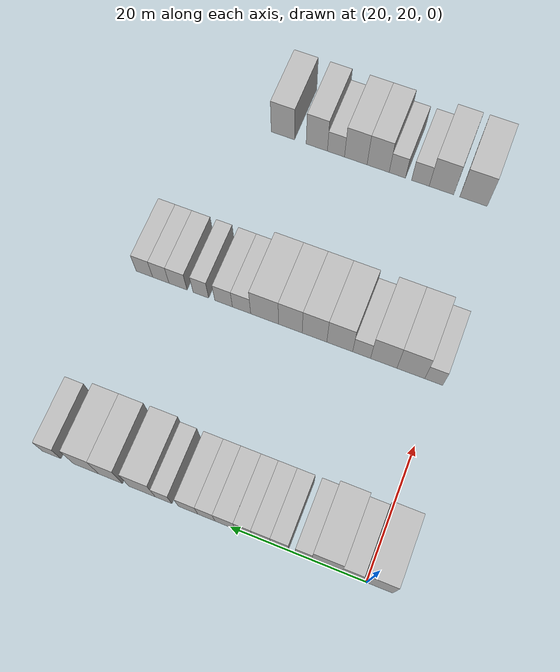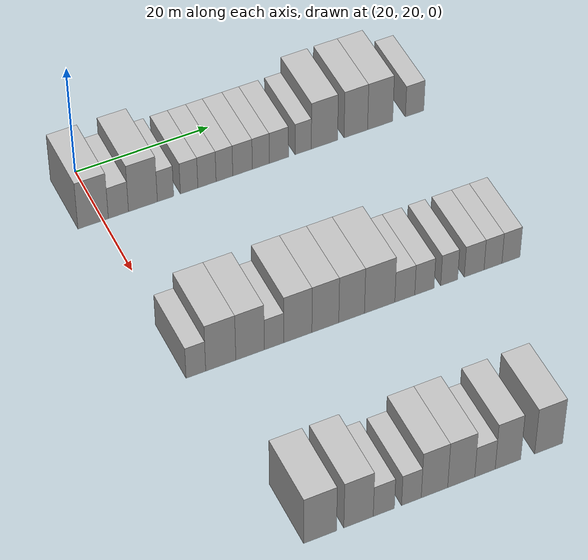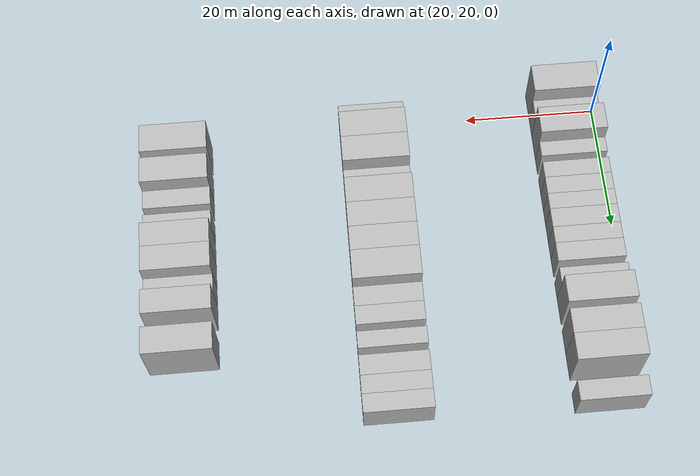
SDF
<sdf version="1.6">
 <world name="default">
  <model name="building_122">
   <static>1</static>
   <pose>25.0000 18.5114 0 0.000000 0.000000 0.000000</pose>
   <link name="link">
    <pose>0 0 4.50 0 0 0</pose>
    <collision name="collision"><geometry><box><size>10.0000 4.4599 9.0000</size></box></geometry></collision>
    <visual name="visual">
     <cast_shadows>0</cast_shadows>
     <geometry><box><size>10.0000 4.4599 9.0000</size></box></geometry>
     <material>
      <script>
       <uri>model://HANNAS_wall/materials/scripts</uri>
       <uri>model://HANNAS_wall/materials/textures</uri>
       <name>vrc/HANNAS_wall</name>
      </script>
     </material>
    </visual>
   </link>
  </model>
  <model name="building_123">
   <static>1</static>
   <pose>25.0000 22.2302 0 0.000000 0.000000 0.000000</pose>
   <link name="link">
    <pose>0 0 3.00 0 0 0</pose>
    <collision name="collision"><geometry><box><size>10.0000 2.9778 6.0000</size></box></geometry></collision>
    <visual name="visual">
     <cast_shadows>0</cast_shadows>
     <geometry><box><size>10.0000 2.9778 6.0000</size></box></geometry>
     <material>
      <script>
       <uri>model://HANNAS_wall/materials/scripts</uri>
       <uri>model://HANNAS_wall/materials/textures</uri>
       <name>vrc/HANNAS_wall</name>
      </script>
     </material>
    </visual>
   </link>
  </model>
  <model name="building_124">
   <static>1</static>
   <pose>25.0000 25.8621 0 0.000000 0.000000 0.000000</pose>
   <link name="link">
    <pose>0 0 4.50 0 0 0</pose>
    <collision name="collision"><geometry><box><size>10.0000 4.2860 9.0000</size></box></geometry></collision>
    <visual name="visual">
     <cast_shadows>0</cast_shadows>
     <geometry><box><size>10.0000 4.2860 9.0000</size></box></geometry>
     <material>
      <script>
       <uri>model://HANNAS_wall/materials/scripts</uri>
       <uri>model://HANNAS_wall/materials/textures</uri>
       <name>vrc/HANNAS_wall</name>
      </script>
     </material>
    </visual>
   </link>
  </model>
  <model name="building_125">
   <static>1</static>
   <pose>25.0000 29.2216 0 0.000000 0.000000 0.000000</pose>
   <link name="link">
    <pose>0 0 3.00 0 0 0</pose>
    <collision name="collision"><geometry><box><size>10.0000 2.4331 6.0000</size></box></geometry></collision>
    <visual name="visual">
     <cast_shadows>0</cast_shadows>
     <geometry><box><size>10.0000 2.4331 6.0000</size></box></geometry>
     <material>
      <script>
       <uri>model://HANNAS_wall/materials/scripts</uri>
       <uri>model://HANNAS_wall/materials/textures</uri>
       <name>vrc/HANNAS_wall</name>
      </script>
     </material>
    </visual>
   </link>
  </model>
  <model name="building_126">
   <static>1</static>
   <pose>25.0000 32.7442 0 0.000000 0.000000 0.000000</pose>
   <link name="link">
    <pose>0 0 3.00 0 0 0</pose>
    <collision name="collision"><geometry><box><size>10.0000 2.6121 6.0000</size></box></geometry></collision>
    <visual name="visual">
     <cast_shadows>0</cast_shadows>
     <geometry><box><size>10.0000 2.6121 6.0000</size></box></geometry>
     <material>
      <script>
       <uri>model://HANNAS_wall/materials/scripts</uri>
       <uri>model://HANNAS_wall/materials/textures</uri>
       <name>vrc/HANNAS_wall</name>
      </script>
     </material>
    </visual>
   </link>
  </model>
  <model name="building_127">
   <static>1</static>
   <pose>25.0000 35.4242 0 0.000000 0.000000 0.000000</pose>
   <link name="link">
    <pose>0 0 3.00 0 0 0</pose>
    <collision name="collision"><geometry><box><size>10.0000 2.7478 6.0000</size></box></geometry></collision>
    <visual name="visual">
     <cast_shadows>0</cast_shadows>
     <geometry><box><size>10.0000 2.7478 6.0000</size></box></geometry>
     <material>
      <script>
       <uri>model://HANNAS_wall/materials/scripts</uri>
       <uri>model://HANNAS_wall/materials/textures</uri>
       <name>vrc/HANNAS_wall</name>
      </script>
     </material>
    </visual>
   </link>
  </model>
  <model name="building_128">
   <static>1</static>
   <pose>25.0000 38.0592 0 0.000000 0.000000 0.000000</pose>
   <link name="link">
    <pose>0 0 3.00 0 0 0</pose>
    <collision name="collision"><geometry><box><size>10.0000 2.5222 6.0000</size></box></geometry></collision>
    <visual name="visual">
     <cast_shadows>0</cast_shadows>
     <geometry><box><size>10.0000 2.5222 6.0000</size></box></geometry>
     <material>
      <script>
       <uri>model://HANNAS_wall/materials/scripts</uri>
       <uri>model://HANNAS_wall/materials/textures</uri>
       <name>vrc/HANNAS_wall</name>
      </script>
     </material>
    </visual>
   </link>
  </model>
  <model name="building_129">
   <static>1</static>
   <pose>25.0000 40.8072 0 0.000000 0.000000 0.000000</pose>
   <link name="link">
    <pose>0 0 3.00 0 0 0</pose>
    <collision name="collision"><geometry><box><size>10.0000 2.9737 6.0000</size></box></geometry></collision>
    <visual name="visual">
     <cast_shadows>0</cast_shadows>
     <geometry><box><size>10.0000 2.9737 6.0000</size></box></geometry>
     <material>
      <script>
       <uri>model://HANNAS_wall/materials/scripts</uri>
       <uri>model://HANNAS_wall/materials/textures</uri>
       <name>vrc/HANNAS_wall</name>
      </script>
     </material>
    </visual>
   </link>
  </model>
  <model name="building_130">
   <static>1</static>
   <pose>25.0000 43.5850 0 0.000000 0.000000 0.000000</pose>
   <link name="link">
    <pose>0 0 3.00 0 0 0</pose>
    <collision name="collision"><geometry><box><size>10.0000 2.5820 6.0000</size></box></geometry></collision>
    <visual name="visual">
     <cast_shadows>0</cast_shadows>
     <geometry><box><size>10.0000 2.5820 6.0000</size></box></geometry>
     <material>
      <script>
       <uri>model://HANNAS_wall/materials/scripts</uri>
       <uri>model://HANNAS_wall/materials/textures</uri>
       <name>vrc/HANNAS_wall</name>
      </script>
     </material>
    </visual>
   </link>
  </model>
  <model name="building_131">
   <static>1</static>
   <pose>25.0000 46.3458 0 0.000000 0.000000 0.000000</pose>
   <link name="link">
    <pose>0 0 3.00 0 0 0</pose>
    <collision name="collision"><geometry><box><size>10.0000 2.9395 6.0000</size></box></geometry></collision>
    <visual name="visual">
     <cast_shadows>0</cast_shadows>
     <geometry><box><size>10.0000 2.9395 6.0000</size></box></geometry>
     <material>
      <script>
       <uri>model://HANNAS_wall/materials/scripts</uri>
       <uri>model://HANNAS_wall/materials/textures</uri>
       <name>vrc/HANNAS_wall</name>
      </script>
     </material>
    </visual>
   </link>
  </model>
  <model name="building_132">
   <static>1</static>
   <pose>25.0000 50.0695 0 0.000000 0.000000 0.000000</pose>
   <link name="link">
    <pose>0 0 3.00 0 0 0</pose>
    <collision name="collision"><geometry><box><size>10.0000 2.5079 6.0000</size></box></geometry></collision>
    <visual name="visual">
     <cast_shadows>0</cast_shadows>
     <geometry><box><size>10.0000 2.5079 6.0000</size></box></geometry>
     <material>
      <script>
       <uri>model://HANNAS_wall/materials/scripts</uri>
       <uri>model://HANNAS_wall/materials/textures</uri>
       <name>vrc/HANNAS_wall</name>
      </script>
     </material>
    </visual>
   </link>
  </model>
  <model name="building_133">
   <static>1</static>
   <pose>25.0000 53.3549 0 0.000000 0.000000 0.000000</pose>
   <link name="link">
    <pose>0 0 4.50 0 0 0</pose>
    <collision name="collision"><geometry><box><size>10.0000 4.0630 9.0000</size></box></geometry></collision>
    <visual name="visual">
     <cast_shadows>0</cast_shadows>
     <geometry><box><size>10.0000 4.0630 9.0000</size></box></geometry>
     <material>
      <script>
       <uri>model://HANNAS_wall/materials/scripts</uri>
       <uri>model://HANNAS_wall/materials/textures</uri>
       <name>vrc/HANNAS_wall</name>
      </script>
     </material>
    </visual>
   </link>
  </model>
  <model name="building_134">
   <static>1</static>
   <pose>25.0000 58.2160 0 0.000000 0.000000 0.000000</pose>
   <link name="link">
    <pose>0 0 4.50 0 0 0</pose>
    <collision name="collision"><geometry><box><size>10.0000 3.6592 9.0000</size></box></geometry></collision>
    <visual name="visual">
     <cast_shadows>0</cast_shadows>
     <geometry><box><size>10.0000 3.6592 9.0000</size></box></geometry>
     <material>
      <script>
       <uri>model://HANNAS_wall/materials/scripts</uri>
       <uri>model://HANNAS_wall/materials/textures</uri>
       <name>vrc/HANNAS_wall</name>
      </script>
     </material>
    </visual>
   </link>
  </model>
  <model name="building_135">
   <static>1</static>
   <pose>25.0000 62.0174 0 0.000000 0.000000 0.000000</pose>
   <link name="link">
    <pose>0 0 4.50 0 0 0</pose>
    <collision name="collision"><geometry><box><size>10.0000 3.9435 9.0000</size></box></geometry></collision>
    <visual name="visual">
     <cast_shadows>0</cast_shadows>
     <geometry><box><size>10.0000 3.9435 9.0000</size></box></geometry>
     <material>
      <script>
       <uri>model://HANNAS_wall/materials/scripts</uri>
       <uri>model://HANNAS_wall/materials/textures</uri>
       <name>vrc/HANNAS_wall</name>
      </script>
     </material>
    </visual>
   </link>
  </model>
  <model name="building_136">
   <static>1</static>
   <pose>25.0000 67.4396 0 0.000000 0.000000 0.000000</pose>
   <link name="link">
    <pose>0 0 3.00 0 0 0</pose>
    <collision name="collision"><geometry><box><size>10.0000 2.9009 6.0000</size></box></geometry></collision>
    <visual name="visual">
     <cast_shadows>0</cast_shadows>
     <geometry><box><size>10.0000 2.9009 6.0000</size></box></geometry>
     <material>
      <script>
       <uri>model://HANNAS_wall/materials/scripts</uri>
       <uri>model://HANNAS_wall/materials/textures</uri>
       <name>vrc/HANNAS_wall</name>
      </script>
     </material>
    </visual>
   </link>
  </model>
  <model name="building_368">
   <static>1</static>
   <pose>55.0000 20.4793 0 0.000000 0.000000 0.000000</pose>
   <link name="link">
    <pose>0 0 3.00 0 0 0</pose>
    <collision name="collision"><geometry><box><size>10.0000 2.7785 6.0000</size></box></geometry></collision>
    <visual name="visual">
     <cast_shadows>0</cast_shadows>
     <geometry><box><size>10.0000 2.7785 6.0000</size></box></geometry>
     <material>
      <script>
       <uri>model://HANNAS_wall/materials/scripts</uri>
       <uri>model://HANNAS_wall/materials/textures</uri>
       <name>vrc/HANNAS_wall</name>
      </script>
     </material>
    </visual>
   </link>
  </model>
  <model name="building_369">
   <static>1</static>
   <pose>55.0000 24.0112 0 0.000000 0.000000 0.000000</pose>
   <link name="link">
    <pose>0 0 4.50 0 0 0</pose>
    <collision name="collision"><geometry><box><size>10.0000 4.2852 9.0000</size></box></geometry></collision>
    <visual name="visual">
     <cast_shadows>0</cast_shadows>
     <geometry><box><size>10.0000 4.2852 9.0000</size></box></geometry>
     <material>
      <script>
       <uri>model://HANNAS_wall/materials/scripts</uri>
       <uri>model://HANNAS_wall/materials/textures</uri>
       <name>vrc/HANNAS_wall</name>
      </script>
     </material>
    </visual>
   </link>
  </model>
  <model name="building_370">
   <static>1</static>
   <pose>55.0000 28.2032 0 0.000000 0.000000 0.000000</pose>
   <link name="link">
    <pose>0 0 4.50 0 0 0</pose>
    <collision name="collision"><geometry><box><size>10.0000 4.0988 9.0000</size></box></geometry></collision>
    <visual name="visual">
     <cast_shadows>0</cast_shadows>
     <geometry><box><size>10.0000 4.0988 9.0000</size></box></geometry>
     <material>
      <script>
       <uri>model://HANNAS_wall/materials/scripts</uri>
       <uri>model://HANNAS_wall/materials/textures</uri>
       <name>vrc/HANNAS_wall</name>
      </script>
     </material>
    </visual>
   </link>
  </model>
  <model name="building_371">
   <static>1</static>
   <pose>55.0000 31.6506 0 0.000000 0.000000 0.000000</pose>
   <link name="link">
    <pose>0 0 3.00 0 0 0</pose>
    <collision name="collision"><geometry><box><size>10.0000 2.7960 6.0000</size></box></geometry></collision>
    <visual name="visual">
     <cast_shadows>0</cast_shadows>
     <geometry><box><size>10.0000 2.7960 6.0000</size></box></geometry>
     <material>
      <script>
       <uri>model://HANNAS_wall/materials/scripts</uri>
       <uri>model://HANNAS_wall/materials/textures</uri>
       <name>vrc/HANNAS_wall</name>
      </script>
     </material>
    </visual>
   </link>
  </model>
  <model name="building_372">
   <static>1</static>
   <pose>55.0000 35.0815 0 0.000000 0.000000 0.000000</pose>
   <link name="link">
    <pose>0 0 4.50 0 0 0</pose>
    <collision name="collision"><geometry><box><size>10.0000 4.0657 9.0000</size></box></geometry></collision>
    <visual name="visual">
     <cast_shadows>0</cast_shadows>
     <geometry><box><size>10.0000 4.0657 9.0000</size></box></geometry>
     <material>
      <script>
       <uri>model://HANNAS_wall/materials/scripts</uri>
       <uri>model://HANNAS_wall/materials/textures</uri>
       <name>vrc/HANNAS_wall</name>
      </script>
     </material>
    </visual>
   </link>
  </model>
  <model name="building_373">
   <static>1</static>
   <pose>55.0000 39.0700 0 0.000000 0.000000 0.000000</pose>
   <link name="link">
    <pose>0 0 4.50 0 0 0</pose>
    <collision name="collision"><geometry><box><size>10.0000 3.9113 9.0000</size></box></geometry></collision>
    <visual name="visual">
     <cast_shadows>0</cast_shadows>
     <geometry><box><size>10.0000 3.9113 9.0000</size></box></geometry>
     <material>
      <script>
       <uri>model://HANNAS_wall/materials/scripts</uri>
       <uri>model://HANNAS_wall/materials/textures</uri>
       <name>vrc/HANNAS_wall</name>
      </script>
     </material>
    </visual>
   </link>
  </model>
  <model name="building_374">
   <static>1</static>
   <pose>55.0000 42.9078 0 0.000000 0.000000 0.000000</pose>
   <link name="link">
    <pose>0 0 4.50 0 0 0</pose>
    <collision name="collision"><geometry><box><size>10.0000 3.7644 9.0000</size></box></geometry></collision>
    <visual name="visual">
     <cast_shadows>0</cast_shadows>
     <geometry><box><size>10.0000 3.7644 9.0000</size></box></geometry>
     <material>
      <script>
       <uri>model://HANNAS_wall/materials/scripts</uri>
       <uri>model://HANNAS_wall/materials/textures</uri>
       <name>vrc/HANNAS_wall</name>
      </script>
     </material>
    </visual>
   </link>
  </model>
  <model name="building_375">
   <static>1</static>
   <pose>55.0000 47.0318 0 0.000000 0.000000 0.000000</pose>
   <link name="link">
    <pose>0 0 4.50 0 0 0</pose>
    <collision name="collision"><geometry><box><size>10.0000 4.4837 9.0000</size></box></geometry></collision>
    <visual name="visual">
     <cast_shadows>0</cast_shadows>
     <geometry><box><size>10.0000 4.4837 9.0000</size></box></geometry>
     <material>
      <script>
       <uri>model://HANNAS_wall/materials/scripts</uri>
       <uri>model://HANNAS_wall/materials/textures</uri>
       <name>vrc/HANNAS_wall</name>
      </script>
     </material>
    </visual>
   </link>
  </model>
  <model name="building_376">
   <static>1</static>
   <pose>55.0000 50.7520 0 0.000000 0.000000 0.000000</pose>
   <link name="link">
    <pose>0 0 3.00 0 0 0</pose>
    <collision name="collision"><geometry><box><size>10.0000 2.9566 6.0000</size></box></geometry></collision>
    <visual name="visual">
     <cast_shadows>0</cast_shadows>
     <geometry><box><size>10.0000 2.9566 6.0000</size></box></geometry>
     <material>
      <script>
       <uri>model://HANNAS_wall/materials/scripts</uri>
       <uri>model://HANNAS_wall/materials/textures</uri>
       <name>vrc/HANNAS_wall</name>
      </script>
     </material>
    </visual>
   </link>
  </model>
  <model name="building_377">
   <static>1</static>
   <pose>55.0000 53.6667 0 0.000000 0.000000 0.000000</pose>
   <link name="link">
    <pose>0 0 3.00 0 0 0</pose>
    <collision name="collision"><geometry><box><size>10.0000 2.8728 6.0000</size></box></geometry></collision>
    <visual name="visual">
     <cast_shadows>0</cast_shadows>
     <geometry><box><size>10.0000 2.8728 6.0000</size></box></geometry>
     <material>
      <script>
       <uri>model://HANNAS_wall/materials/scripts</uri>
       <uri>model://HANNAS_wall/materials/textures</uri>
       <name>vrc/HANNAS_wall</name>
      </script>
     </material>
    </visual>
   </link>
  </model>
  <model name="building_378">
   <static>1</static>
   <pose>55.0000 57.3732 0 0.000000 0.000000 0.000000</pose>
   <link name="link">
    <pose>0 0 3.00 0 0 0</pose>
    <collision name="collision"><geometry><box><size>10.0000 2.5402 6.0000</size></box></geometry></collision>
    <visual name="visual">
     <cast_shadows>0</cast_shadows>
     <geometry><box><size>10.0000 2.5402 6.0000</size></box></geometry>
     <material>
      <script>
       <uri>model://HANNAS_wall/materials/scripts</uri>
       <uri>model://HANNAS_wall/materials/textures</uri>
       <name>vrc/HANNAS_wall</name>
      </script>
     </material>
    </visual>
   </link>
  </model>
  <model name="building_379">
   <static>1</static>
   <pose>55.0000 61.1310 0 0.000000 0.000000 0.000000</pose>
   <link name="link">
    <pose>0 0 3.00 0 0 0</pose>
    <collision name="collision"><geometry><box><size>10.0000 2.9754 6.0000</size></box></geometry></collision>
    <visual name="visual">
     <cast_shadows>0</cast_shadows>
     <geometry><box><size>10.0000 2.9754 6.0000</size></box></geometry>
     <material>
      <script>
       <uri>model://HANNAS_wall/materials/scripts</uri>
       <uri>model://HANNAS_wall/materials/textures</uri>
       <name>vrc/HANNAS_wall</name>
      </script>
     </material>
    </visual>
   </link>
  </model>
  <model name="building_380">
   <static>1</static>
   <pose>55.0000 63.9722 0 0.000000 0.000000 0.000000</pose>
   <link name="link">
    <pose>0 0 3.00 0 0 0</pose>
    <collision name="collision"><geometry><box><size>10.0000 2.7070 6.0000</size></box></geometry></collision>
    <visual name="visual">
     <cast_shadows>0</cast_shadows>
     <geometry><box><size>10.0000 2.7070 6.0000</size></box></geometry>
     <material>
      <script>
       <uri>model://HANNAS_wall/materials/scripts</uri>
       <uri>model://HANNAS_wall/materials/textures</uri>
       <name>vrc/HANNAS_wall</name>
      </script>
     </material>
    </visual>
   </link>
  </model>
  <model name="building_381">
   <static>1</static>
   <pose>55.0000 66.6975 0 0.000000 0.000000 0.000000</pose>
   <link name="link">
    <pose>0 0 3.00 0 0 0</pose>
    <collision name="collision"><geometry><box><size>10.0000 2.7436 6.0000</size></box></geometry></collision>
    <visual name="visual">
     <cast_shadows>0</cast_shadows>
     <geometry><box><size>10.0000 2.7436 6.0000</size></box></geometry>
     <material>
      <script>
       <uri>model://HANNAS_wall/materials/scripts</uri>
       <uri>model://HANNAS_wall/materials/textures</uri>
       <name>vrc/HANNAS_wall</name>
      </script>
     </material>
    </visual>
   </link>
  </model>
  <model name="building_604">
   <static>1</static>
   <pose>85.0000 23.9300 0 0.000000 0.000000 0.000000</pose>
   <link name="link">
    <pose>0 0 4.50 0 0 0</pose>
    <collision name="collision"><geometry><box><size>10.0000 4.4939 9.0000</size></box></geometry></collision>
    <visual name="visual">
     <cast_shadows>0</cast_shadows>
     <geometry><box><size>10.0000 4.4939 9.0000</size></box></geometry>
     <material>
      <script>
       <uri>model://HANNAS_wall/materials/scripts</uri>
       <uri>model://HANNAS_wall/materials/textures</uri>
       <name>vrc/HANNAS_wall</name>
      </script>
     </material>
    </visual>
   </link>
  </model>
  <model name="building_605">
   <static>1</static>
   <pose>85.0000 29.2043 0 0.000000 0.000000 0.000000</pose>
   <link name="link">
    <pose>0 0 4.50 0 0 0</pose>
    <collision name="collision"><geometry><box><size>10.0000 4.0549 9.0000</size></box></geometry></collision>
    <visual name="visual">
     <cast_shadows>0</cast_shadows>
     <geometry><box><size>10.0000 4.0549 9.0000</size></box></geometry>
     <material>
      <script>
       <uri>model://HANNAS_wall/materials/scripts</uri>
       <uri>model://HANNAS_wall/materials/textures</uri>
       <name>vrc/HANNAS_wall</name>
      </script>
     </material>
    </visual>
   </link>
  </model>
  <model name="building_606">
   <static>1</static>
   <pose>85.0000 32.6960 0 0.000000 0.000000 0.000000</pose>
   <link name="link">
    <pose>0 0 3.00 0 0 0</pose>
    <collision name="collision"><geometry><box><size>10.0000 2.9284 6.0000</size></box></geometry></collision>
    <visual name="visual">
     <cast_shadows>0</cast_shadows>
     <geometry><box><size>10.0000 2.9284 6.0000</size></box></geometry>
     <material>
      <script>
       <uri>model://HANNAS_wall/materials/scripts</uri>
       <uri>model://HANNAS_wall/materials/textures</uri>
       <name>vrc/HANNAS_wall</name>
      </script>
     </material>
    </visual>
   </link>
  </model>
  <model name="building_607">
   <static>1</static>
   <pose>85.0000 36.5300 0 0.000000 0.000000 0.000000</pose>
   <link name="link">
    <pose>0 0 3.00 0 0 0</pose>
    <collision name="collision"><geometry><box><size>10.0000 2.7398 6.0000</size></box></geometry></collision>
    <visual name="visual">
     <cast_shadows>0</cast_shadows>
     <geometry><box><size>10.0000 2.7398 6.0000</size></box></geometry>
     <material>
      <script>
       <uri>model://HANNAS_wall/materials/scripts</uri>
       <uri>model://HANNAS_wall/materials/textures</uri>
       <name>vrc/HANNAS_wall</name>
      </script>
     </material>
    </visual>
   </link>
  </model>
  <model name="building_608">
   <static>1</static>
   <pose>85.0000 39.7579 0 0.000000 0.000000 0.000000</pose>
   <link name="link">
    <pose>0 0 4.50 0 0 0</pose>
    <collision name="collision"><geometry><box><size>10.0000 3.7160 9.0000</size></box></geometry></collision>
    <visual name="visual">
     <cast_shadows>0</cast_shadows>
     <geometry><box><size>10.0000 3.7160 9.0000</size></box></geometry>
     <material>
      <script>
       <uri>model://HANNAS_wall/materials/scripts</uri>
       <uri>model://HANNAS_wall/materials/textures</uri>
       <name>vrc/HANNAS_wall</name>
      </script>
     </material>
    </visual>
   </link>
  </model>
  <model name="building_609">
   <static>1</static>
   <pose>85.0000 43.5272 0 0.000000 0.000000 0.000000</pose>
   <link name="link">
    <pose>0 0 4.50 0 0 0</pose>
    <collision name="collision"><geometry><box><size>10.0000 3.8226 9.0000</size></box></geometry></collision>
    <visual name="visual">
     <cast_shadows>0</cast_shadows>
     <geometry><box><size>10.0000 3.8226 9.0000</size></box></geometry>
     <material>
      <script>
       <uri>model://HANNAS_wall/materials/scripts</uri>
       <uri>model://HANNAS_wall/materials/textures</uri>
       <name>vrc/HANNAS_wall</name>
      </script>
     </material>
    </visual>
   </link>
  </model>
  <model name="building_610">
   <static>1</static>
   <pose>85.0000 46.8882 0 0.000000 0.000000 0.000000</pose>
   <link name="link">
    <pose>0 0 3.00 0 0 0</pose>
    <collision name="collision"><geometry><box><size>10.0000 2.8993 6.0000</size></box></geometry></collision>
    <visual name="visual">
     <cast_shadows>0</cast_shadows>
     <geometry><box><size>10.0000 2.8993 6.0000</size></box></geometry>
     <material>
      <script>
       <uri>model://HANNAS_wall/materials/scripts</uri>
       <uri>model://HANNAS_wall/materials/textures</uri>
       <name>vrc/HANNAS_wall</name>
      </script>
     </material>
    </visual>
   </link>
  </model>
  <model name="building_611">
   <static>1</static>
   <pose>85.0000 50.1542 0 0.000000 0.000000 0.000000</pose>
   <link name="link">
    <pose>0 0 4.50 0 0 0</pose>
    <collision name="collision"><geometry><box><size>10.0000 3.6327 9.0000</size></box></geometry></collision>
    <visual name="visual">
     <cast_shadows>0</cast_shadows>
     <geometry><box><size>10.0000 3.6327 9.0000</size></box></geometry>
     <material>
      <script>
       <uri>model://HANNAS_wall/materials/scripts</uri>
       <uri>model://HANNAS_wall/materials/textures</uri>
       <name>vrc/HANNAS_wall</name>
      </script>
     </material>
    </visual>
   </link>
  </model>
  <model name="building_612">
   <static>1</static>
   <pose>85.0000 55.9797 0 0.000000 0.000000 0.000000</pose>
   <link name="link">
    <pose>0 0 4.50 0 0 0</pose>
    <collision name="collision"><geometry><box><size>10.0000 4.0182 9.0000</size></box></geometry></collision>
    <visual name="visual">
     <cast_shadows>0</cast_shadows>
     <geometry><box><size>10.0000 4.0182 9.0000</size></box></geometry>
     <material>
      <script>
       <uri>model://HANNAS_wall/materials/scripts</uri>
       <uri>model://HANNAS_wall/materials/textures</uri>
       <name>vrc/HANNAS_wall</name>
      </script>
     </material>
    </visual>
   </link>
  </model>
 </world>
</sdf>
